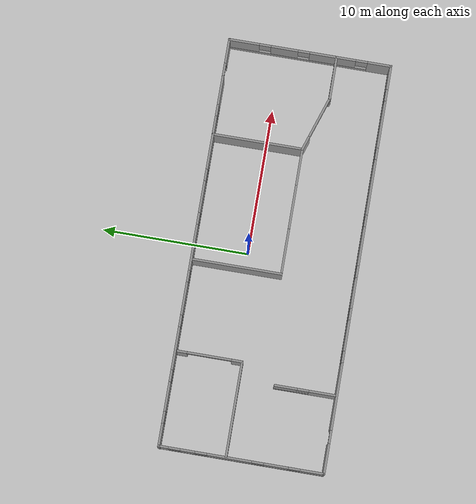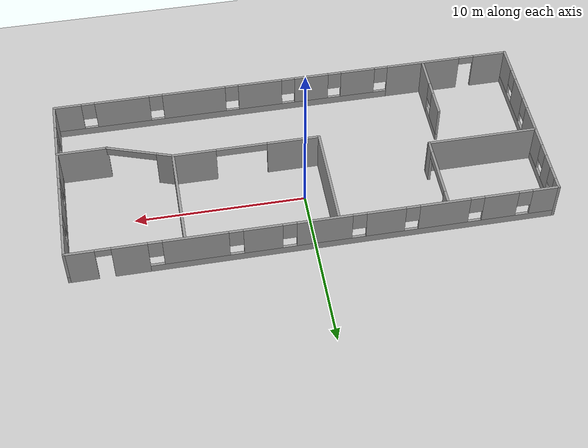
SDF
<?xml version="1.0"?>
<sdf version="1.6">
	<world name="office_world">
		<physics name="1ms" type="ignored">
			<max_step_size>0.001</max_step_size>
			<real_time_factor>1.0</real_time_factor>
		</physics>
		<plugin filename="ignition-gazebo-physics-system" name="ignition::gazebo::systems::Physics"></plugin>
		<plugin filename="ignition-gazebo-user-commands-system" name="ignition::gazebo::systems::UserCommands"></plugin>
		<plugin filename="ignition-gazebo-scene-broadcaster-system" name="ignition::gazebo::systems::SceneBroadcaster"></plugin>
		<plugin filename="ignition-gazebo-contact-system" name="ignition::gazebo::systems::Contact"></plugin>

		<model name="ground_plane">
			<static>true</static>
			<link name="link">
				<collision name="collision">
					<geometry>
						<plane>
						<normal>0 0 1</normal>
						<size>100 100</size>
						</plane>
					</geometry>
				</collision>
				<visual name="visual">
				<geometry>
					<plane>
						<normal>0 0 1</normal>
						<size>100 100</size>
					</plane>
				</geometry>
				<material>
					<ambient>0.8 0.8 0.8 1</ambient>
					<diffuse>0.8 0.8 0.8 1</diffuse>
					<specular>0.8 0.8 0.8 1</specular>
				</material>
				</visual>
			</link>
		</model>

		<light type="directional" name="sun">
			<cast_shadows>true</cast_shadows>
			<pose>0 0 10 0 0 0</pose>
			<diffuse>0.8 0.8 0.8 1</diffuse>
			<specular>0.2 0.2 0.2 1</specular>
			<attenuation>
				<range>1000</range>
				<constant>0.9</constant>
				<linear>0.01</linear>
				<quadratic>0.001</quadratic>
			</attenuation>
			<direction>-0.5 0.1 -0.9</direction>
		</light>

		<include>
			<uri>/office</uri>
		</include>
	</world>
</sdf>

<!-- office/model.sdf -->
<sdf version='1.7'>
  <model name='office'>
    <pose>0 0 0 0 -0 0</pose>
    <link name='Wall_12'>
      <pose>0.014979 -7.43334 0 0 -0 0</pose>
      <visual name='Wall_12_Visual_0'>
        <pose>-12.9625 0 1.25 0 -0 0</pose>
        <geometry>
          <box>
            <size>2.075 0.15 2.5</size>
          </box>
        </geometry>
        <material>
          <script>
            <uri>file://media/materials/scripts/gazebo.material</uri>
            <name>Gazebo/Grey</name>
          </script>
          <ambient>1 1 1 1</ambient>
        </material>
        <meta>
          <layer>0</layer>
        </meta>
      </visual>
      <collision name='Wall_12_Collision_0'>
        <geometry>
          <box>
            <size>2.075 0.15 2.5</size>
          </box>
        </geometry>
        <pose>-12.9625 0 1.25 0 -0 0</pose>
      </collision>
      <visual name='Wall_12_Visual_1'>
        <pose>-8.75 0 1.25 0 -0 0</pose>
        <geometry>
          <box>
            <size>4.55 0.15 2.5</size>
          </box>
        </geometry>
        <material>
          <script>
            <uri>file://media/materials/scripts/gazebo.material</uri>
            <name>Gazebo/Grey</name>
          </script>
          <ambient>1 1 1 1</ambient>
        </material>
        <meta>
          <layer>0</layer>
        </meta>
      </visual>
      <collision name='Wall_12_Collision_1'>
        <geometry>
          <box>
            <size>4.55 0.15 2.5</size>
          </box>
        </geometry>
        <pose>-8.75 0 1.25 0 -0 0</pose>
      </collision>
      <visual name='Wall_12_Visual_2'>
        <pose>3.7625 0 0.25 0 -0 0</pose>
        <geometry>
          <box>
            <size>20.475 0.15 0.5</size>
          </box>
        </geometry>
        <material>
          <script>
            <uri>file://media/materials/scripts/gazebo.material</uri>
            <name>Gazebo/Grey</name>
          </script>
          <ambient>1 1 1 1</ambient>
        </material>
        <meta>
          <layer>0</layer>
        </meta>
      </visual>
      <collision name='Wall_12_Collision_2'>
        <geometry>
          <box>
            <size>20.475 0.15 0.5</size>
          </box>
        </geometry>
        <pose>3.7625 0 0.25 0 -0 0</pose>
      </collision>
      <visual name='Wall_12_Visual_3'>
        <pose>-4.62 0 1.5 0 -0 0</pose>
        <geometry>
          <box>
            <size>2.11 0.15 2</size>
          </box>
        </geometry>
        <material>
          <script>
            <uri>file://media/materials/scripts/gazebo.material</uri>
            <name>Gazebo/Grey</name>
          </script>
          <ambient>1 1 1 1</ambient>
        </material>
        <meta>
          <layer>0</layer>
        </meta>
      </visual>
      <collision name='Wall_12_Collision_3'>
        <geometry>
          <box>
            <size>2.11 0.15 2</size>
          </box>
        </geometry>
        <pose>-4.62 0 1.5 0 -0 0</pose>
      </collision>
      <visual name='Wall_12_Visual_4'>
        <pose>-1.72 0 1.5 0 -0 0</pose>
        <geometry>
          <box>
            <size>2.09 0.15 2</size>
          </box>
        </geometry>
        <material>
          <script>
            <uri>file://media/materials/scripts/gazebo.material</uri>
            <name>Gazebo/Grey</name>
          </script>
          <ambient>1 1 1 1</ambient>
        </material>
        <meta>
          <layer>0</layer>
        </meta>
      </visual>
      <collision name='Wall_12_Collision_4'>
        <geometry>
          <box>
            <size>2.09 0.15 2</size>
          </box>
        </geometry>
        <pose>-1.72 0 1.5 0 -0 0</pose>
      </collision>
      <visual name='Wall_12_Visual_5'>
        <pose>1.465 0 1.5 0 -0 0</pose>
        <geometry>
          <box>
            <size>2.68 0.15 2</size>
          </box>
        </geometry>
        <material>
          <script>
            <uri>file://media/materials/scripts/gazebo.material</uri>
            <name>Gazebo/Grey</name>
          </script>
          <ambient>1 1 1 1</ambient>
        </material>
        <meta>
          <layer>0</layer>
        </meta>
      </visual>
      <collision name='Wall_12_Collision_5'>
        <geometry>
          <box>
            <size>2.68 0.15 2</size>
          </box>
        </geometry>
        <pose>1.465 0 1.5 0 -0 0</pose>
      </collision>
      <visual name='Wall_12_Visual_6'>
        <pose>5.52 0 1.5 0 -0 0</pose>
        <geometry>
          <box>
            <size>3.83 0.15 2</size>
          </box>
        </geometry>
        <material>
          <script>
            <uri>file://media/materials/scripts/gazebo.material</uri>
            <name>Gazebo/Grey</name>
          </script>
          <ambient>1 1 1 1</ambient>
        </material>
        <meta>
          <layer>0</layer>
        </meta>
      </visual>
      <collision name='Wall_12_Collision_6'>
        <geometry>
          <box>
            <size>3.83 0.15 2</size>
          </box>
        </geometry>
        <pose>5.52 0 1.5 0 -0 0</pose>
      </collision>
      <visual name='Wall_12_Visual_7'>
        <pose>9.87 0 1.5 0 -0 0</pose>
        <geometry>
          <box>
            <size>3.27 0.15 2</size>
          </box>
        </geometry>
        <material>
          <script>
            <uri>file://media/materials/scripts/gazebo.material</uri>
            <name>Gazebo/Grey</name>
          </script>
          <ambient>1 1 1 1</ambient>
        </material>
        <meta>
          <layer>0</layer>
        </meta>
      </visual>
      <collision name='Wall_12_Collision_7'>
        <geometry>
          <box>
            <size>3.27 0.15 2</size>
          </box>
        </geometry>
        <pose>9.87 0 1.5 0 -0 0</pose>
      </collision>
      <visual name='Wall_12_Visual_8'>
        <pose>13.1525 0 1.5 0 -0 0</pose>
        <geometry>
          <box>
            <size>1.695 0.15 2</size>
          </box>
        </geometry>
        <material>
          <script>
            <uri>file://media/materials/scripts/gazebo.material</uri>
            <name>Gazebo/Grey</name>
          </script>
          <ambient>1 1 1 1</ambient>
        </material>
        <meta>
          <layer>0</layer>
        </meta>
      </visual>
      <collision name='Wall_12_Collision_8'>
        <geometry>
          <box>
            <size>1.695 0.15 2</size>
          </box>
        </geometry>
        <pose>13.1525 0 1.5 0 -0 0</pose>
      </collision>
      <visual name='Wall_12_Visual_9'>
        <pose>-6.075 0 1.9 0 -0 0</pose>
        <geometry>
          <box>
            <size>0.8 0.15 1.2</size>
          </box>
        </geometry>
        <material>
          <script>
            <uri>file://media/materials/scripts/gazebo.material</uri>
            <name>Gazebo/Grey</name>
          </script>
          <ambient>1 1 1 1</ambient>
        </material>
        <meta>
          <layer>0</layer>
        </meta>
      </visual>
      <collision name='Wall_12_Collision_9'>
        <geometry>
          <box>
            <size>0.8 0.15 1.2</size>
          </box>
        </geometry>
        <pose>-6.075 0 1.9 0 -0 0</pose>
      </collision>
      <visual name='Wall_12_Visual_10'>
        <pose>-3.165 0 1.9 0 -0 0</pose>
        <geometry>
          <box>
            <size>0.8 0.15 1.2</size>
          </box>
        </geometry>
        <material>
          <script>
            <uri>file://media/materials/scripts/gazebo.material</uri>
            <name>Gazebo/Grey</name>
          </script>
          <ambient>1 1 1 1</ambient>
        </material>
        <meta>
          <layer>0</layer>
        </meta>
      </visual>
      <collision name='Wall_12_Collision_10'>
        <geometry>
          <box>
            <size>0.8 0.15 1.2</size>
          </box>
        </geometry>
        <pose>-3.165 0 1.9 0 -0 0</pose>
      </collision>
      <visual name='Wall_12_Visual_11'>
        <pose>-0.275 0 1.9 0 -0 0</pose>
        <geometry>
          <box>
            <size>0.8 0.15 1.2</size>
          </box>
        </geometry>
        <material>
          <script>
            <uri>file://media/materials/scripts/gazebo.material</uri>
            <name>Gazebo/Grey</name>
          </script>
          <ambient>1 1 1 1</ambient>
        </material>
        <meta>
          <layer>0</layer>
        </meta>
      </visual>
      <collision name='Wall_12_Collision_11'>
        <geometry>
          <box>
            <size>0.8 0.15 1.2</size>
          </box>
        </geometry>
        <pose>-0.275 0 1.9 0 -0 0</pose>
      </collision>
      <visual name='Wall_12_Visual_12'>
        <pose>3.205 0 1.9 0 -0 0</pose>
        <geometry>
          <box>
            <size>0.8 0.15 1.2</size>
          </box>
        </geometry>
        <material>
          <script>
            <uri>file://media/materials/scripts/gazebo.material</uri>
            <name>Gazebo/Grey</name>
          </script>
          <ambient>1 1 1 1</ambient>
        </material>
        <meta>
          <layer>0</layer>
        </meta>
      </visual>
      <collision name='Wall_12_Collision_12'>
        <geometry>
          <box>
            <size>0.8 0.15 1.2</size>
          </box>
        </geometry>
        <pose>3.205 0 1.9 0 -0 0</pose>
      </collision>
      <visual name='Wall_12_Visual_13'>
        <pose>7.835 0 1.9 0 -0 0</pose>
        <geometry>
          <box>
            <size>0.8 0.15 1.2</size>
          </box>
        </geometry>
        <material>
          <script>
            <uri>file://media/materials/scripts/gazebo.material</uri>
            <name>Gazebo/Grey</name>
          </script>
          <ambient>1 1 1 1</ambient>
        </material>
        <meta>
          <layer>0</layer>
        </meta>
      </visual>
      <collision name='Wall_12_Collision_13'>
        <geometry>
          <box>
            <size>0.8 0.15 1.2</size>
          </box>
        </geometry>
        <pose>7.835 0 1.9 0 -0 0</pose>
      </collision>
      <visual name='Wall_12_Visual_14'>
        <pose>11.905 0 1.9 0 -0 0</pose>
        <geometry>
          <box>
            <size>0.8 0.15 1.2</size>
          </box>
        </geometry>
        <material>
          <script>
            <uri>file://media/materials/scripts/gazebo.material</uri>
            <name>Gazebo/Grey</name>
          </script>
          <ambient>1 1 1 1</ambient>
        </material>
        <meta>
          <layer>0</layer>
        </meta>
      </visual>
      <collision name='Wall_12_Collision_14'>
        <geometry>
          <box>
            <size>0.8 0.15 1.2</size>
          </box>
        </geometry>
        <pose>11.905 0 1.9 0 -0 0</pose>
      </collision>
      <visual name='Wall_12_Visual_15'>
        <pose>-11.475 0 2.25 0 -0 0</pose>
        <geometry>
          <box>
            <size>0.9 0.15 0.5</size>
          </box>
        </geometry>
        <material>
          <script>
            <uri>file://media/materials/scripts/gazebo.material</uri>
            <name>Gazebo/Grey</name>
          </script>
          <ambient>1 1 1 1</ambient>
        </material>
        <meta>
          <layer>0</layer>
        </meta>
      </visual>
      <collision name='Wall_12_Collision_15'>
        <geometry>
          <box>
            <size>0.9 0.15 0.5</size>
          </box>
        </geometry>
        <pose>-11.475 0 2.25 0 -0 0</pose>
      </collision>
    </link>
    <link name='Wall_13'>
      <pose>13.945 -1.88834 0 0 -0 1.5699</pose>
      <visual name='Wall_13_Visual_0'>
        <pose>-4.78246 0 1.25 0 -0 0</pose>
        <geometry>
          <box>
            <size>1.67519 0.15 2.5</size>
          </box>
        </geometry>
        <material>
          <script>
            <uri>file://media/materials/scripts/gazebo.material</uri>
            <name>Gazebo/Grey</name>
          </script>
          <ambient>1 1 1 1</ambient>
        </material>
        <meta>
          <layer>0</layer>
        </meta>
      </visual>
      <collision name='Wall_13_Collision_0'>
        <geometry>
          <box>
            <size>1.67519 0.15 2.5</size>
          </box>
        </geometry>
        <pose>-4.78246 0 1.25 0 -0 0</pose>
      </collision>
      <visual name='Wall_13_Visual_1'>
        <pose>0.837594 0 0.25 0 -0 0</pose>
        <geometry>
          <box>
            <size>9.56492 0.15 0.5</size>
          </box>
        </geometry>
        <material>
          <script>
            <uri>file://media/materials/scripts/gazebo.material</uri>
            <name>Gazebo/Grey</name>
          </script>
          <ambient>1 1 1 1</ambient>
        </material>
        <meta>
          <layer>0</layer>
        </meta>
      </visual>
      <collision name='Wall_13_Collision_1'>
        <geometry>
          <box>
            <size>9.56492 0.15 0.5</size>
          </box>
        </geometry>
        <pose>0.837594 0 0.25 0 -0 0</pose>
      </collision>
      <visual name='Wall_13_Visual_2'>
        <pose>-1.56471 0 1.5 0 -0 0</pose>
        <geometry>
          <box>
            <size>3.16031 0.15 2</size>
          </box>
        </geometry>
        <material>
          <script>
            <uri>file://media/materials/scripts/gazebo.material</uri>
            <name>Gazebo/Grey</name>
          </script>
          <ambient>1 1 1 1</ambient>
        </material>
        <meta>
          <layer>0</layer>
        </meta>
      </visual>
      <collision name='Wall_13_Collision_2'>
        <geometry>
          <box>
            <size>3.16031 0.15 2</size>
          </box>
        </geometry>
        <pose>-1.56471 0 1.5 0 -0 0</pose>
      </collision>
      <visual name='Wall_13_Visual_3'>
        <pose>1.74798 0 1.5 0 -0 0</pose>
        <geometry>
          <box>
            <size>1.86509 0.15 2</size>
          </box>
        </geometry>
        <material>
          <script>
            <uri>file://media/materials/scripts/gazebo.material</uri>
            <name>Gazebo/Grey</name>
          </script>
          <ambient>1 1 1 1</ambient>
        </material>
        <meta>
          <layer>0</layer>
        </meta>
      </visual>
      <collision name='Wall_13_Collision_3'>
        <geometry>
          <box>
            <size>1.86509 0.15 2</size>
          </box>
        </geometry>
        <pose>1.74798 0 1.5 0 -0 0</pose>
      </collision>
      <visual name='Wall_13_Visual_4'>
        <pose>4.55029 0 1.5 0 -0 0</pose>
        <geometry>
          <box>
            <size>2.13953 0.15 2</size>
          </box>
        </geometry>
        <material>
          <script>
            <uri>file://media/materials/scripts/gazebo.material</uri>
            <name>Gazebo/Grey</name>
          </script>
          <ambient>1 1 1 1</ambient>
        </material>
        <meta>
          <layer>0</layer>
        </meta>
      </visual>
      <collision name='Wall_13_Collision_4'>
        <geometry>
          <box>
            <size>2.13953 0.15 2</size>
          </box>
        </geometry>
        <pose>4.55029 0 1.5 0 -0 0</pose>
      </collision>
      <visual name='Wall_13_Visual_5'>
        <pose>-3.54487 0 1.9 0 -0 0</pose>
        <geometry>
          <box>
            <size>0.8 0.15 1.2</size>
          </box>
        </geometry>
        <material>
          <script>
            <uri>file://media/materials/scripts/gazebo.material</uri>
            <name>Gazebo/Grey</name>
          </script>
          <ambient>1 1 1 1</ambient>
        </material>
        <meta>
          <layer>0</layer>
        </meta>
      </visual>
      <collision name='Wall_13_Collision_5'>
        <geometry>
          <box>
            <size>0.8 0.15 1.2</size>
          </box>
        </geometry>
        <pose>-3.54487 0 1.9 0 -0 0</pose>
      </collision>
      <visual name='Wall_13_Visual_6'>
        <pose>0.415441 0 1.9 0 -0 0</pose>
        <geometry>
          <box>
            <size>0.8 0.15 1.2</size>
          </box>
        </geometry>
        <material>
          <script>
            <uri>file://media/materials/scripts/gazebo.material</uri>
            <name>Gazebo/Grey</name>
          </script>
          <ambient>1 1 1 1</ambient>
        </material>
        <meta>
          <layer>0</layer>
        </meta>
      </visual>
      <collision name='Wall_13_Collision_6'>
        <geometry>
          <box>
            <size>0.8 0.15 1.2</size>
          </box>
        </geometry>
        <pose>0.415441 0 1.9 0 -0 0</pose>
      </collision>
      <visual name='Wall_13_Visual_7'>
        <pose>3.08053 0 1.9 0 -0 0</pose>
        <geometry>
          <box>
            <size>0.8 0.15 1.2</size>
          </box>
        </geometry>
        <material>
          <script>
            <uri>file://media/materials/scripts/gazebo.material</uri>
            <name>Gazebo/Grey</name>
          </script>
          <ambient>1 1 1 1</ambient>
        </material>
        <meta>
          <layer>0</layer>
        </meta>
      </visual>
      <collision name='Wall_13_Collision_7'>
        <geometry>
          <box>
            <size>0.8 0.15 1.2</size>
          </box>
        </geometry>
        <pose>3.08053 0 1.9 0 -0 0</pose>
      </collision>
    </link>
    <link name='Wall_14'>
      <pose>-0.005021 3.66166 0 0 -0 3.14123</pose>
      <visual name='Wall_14_Visual_0'>
        <pose>-13.1575 0 1.25 0 -0 0</pose>
        <geometry>
          <box>
            <size>1.72497 0.15 2.5</size>
          </box>
        </geometry>
        <material>
          <script>
            <uri>file://media/materials/scripts/gazebo.material</uri>
            <name>Gazebo/Grey</name>
          </script>
          <ambient>1 1 1 1</ambient>
        </material>
        <meta>
          <layer>0</layer>
        </meta>
      </visual>
      <collision name='Wall_14_Collision_0'>
        <geometry>
          <box>
            <size>1.72497 0.15 2.5</size>
          </box>
        </geometry>
        <pose>-13.1575 0 1.25 0 -0 0</pose>
      </collision>
      <visual name='Wall_14_Visual_1'>
        <pose>-10.395 0 1.25 0 -0 0</pose>
        <geometry>
          <box>
            <size>2.00001 0.15 2.5</size>
          </box>
        </geometry>
        <material>
          <script>
            <uri>file://media/materials/scripts/gazebo.material</uri>
            <name>Gazebo/Grey</name>
          </script>
          <ambient>1 1 1 1</ambient>
        </material>
        <meta>
          <layer>0</layer>
        </meta>
      </visual>
      <collision name='Wall_14_Collision_1'>
        <geometry>
          <box>
            <size>2.00001 0.15 2.5</size>
          </box>
        </geometry>
        <pose>-10.395 0 1.25 0 -0 0</pose>
      </collision>
      <visual name='Wall_14_Visual_2'>
        <pose>2.31249 0 0.25 0 -0 0</pose>
        <geometry>
          <box>
            <size>23.415 0.15 0.5</size>
          </box>
        </geometry>
        <material>
          <script>
            <uri>file://media/materials/scripts/gazebo.material</uri>
            <name>Gazebo/Grey</name>
          </script>
          <ambient>1 1 1 1</ambient>
        </material>
        <meta>
          <layer>0</layer>
        </meta>
      </visual>
      <collision name='Wall_14_Collision_2'>
        <geometry>
          <box>
            <size>23.415 0.15 0.5</size>
          </box>
        </geometry>
        <pose>2.31249 0 0.25 0 -0 0</pose>
      </collision>
      <visual name='Wall_14_Visual_3'>
        <pose>-6.75501 0 1.5 0 -0 0</pose>
        <geometry>
          <box>
            <size>3.68001 0.15 2</size>
          </box>
        </geometry>
        <material>
          <script>
            <uri>file://media/materials/scripts/gazebo.material</uri>
            <name>Gazebo/Grey</name>
          </script>
          <ambient>1 1 1 1</ambient>
        </material>
        <meta>
          <layer>0</layer>
        </meta>
      </visual>
      <collision name='Wall_14_Collision_3'>
        <geometry>
          <box>
            <size>3.68001 0.15 2</size>
          </box>
        </geometry>
        <pose>-6.75501 0 1.5 0 -0 0</pose>
      </collision>
      <visual name='Wall_14_Visual_4'>
        <pose>-3.01501 0 1.5 0 -0 0</pose>
        <geometry>
          <box>
            <size>2.19999 0.15 2</size>
          </box>
        </geometry>
        <material>
          <script>
            <uri>file://media/materials/scripts/gazebo.material</uri>
            <name>Gazebo/Grey</name>
          </script>
          <ambient>1 1 1 1</ambient>
        </material>
        <meta>
          <layer>0</layer>
        </meta>
      </visual>
      <collision name='Wall_14_Collision_4'>
        <geometry>
          <box>
            <size>2.19999 0.15 2</size>
          </box>
        </geometry>
        <pose>-3.01501 0 1.5 0 -0 0</pose>
      </collision>
      <visual name='Wall_14_Visual_5'>
        <pose>0.465004 0 1.5 0 -0 0</pose>
        <geometry>
          <box>
            <size>3.16003 0.15 2</size>
          </box>
        </geometry>
        <material>
          <script>
            <uri>file://media/materials/scripts/gazebo.material</uri>
            <name>Gazebo/Grey</name>
          </script>
          <ambient>1 1 1 1</ambient>
        </material>
        <meta>
          <layer>0</layer>
        </meta>
      </visual>
      <collision name='Wall_14_Collision_5'>
        <geometry>
          <box>
            <size>3.16003 0.15 2</size>
          </box>
        </geometry>
        <pose>0.465004 0 1.5 0 -0 0</pose>
      </collision>
      <visual name='Wall_14_Visual_6'>
        <pose>3.97001 0 1.5 0 -0 0</pose>
        <geometry>
          <box>
            <size>2.24999 0.15 2</size>
          </box>
        </geometry>
        <material>
          <script>
            <uri>file://media/materials/scripts/gazebo.material</uri>
            <name>Gazebo/Grey</name>
          </script>
          <ambient>1 1 1 1</ambient>
        </material>
        <meta>
          <layer>0</layer>
        </meta>
      </visual>
      <collision name='Wall_14_Collision_6'>
        <geometry>
          <box>
            <size>2.24999 0.15 2</size>
          </box>
        </geometry>
        <pose>3.97001 0 1.5 0 -0 0</pose>
      </collision>
      <visual name='Wall_14_Visual_7'>
        <pose>7.35001 0 1.5 0 -0 0</pose>
        <geometry>
          <box>
            <size>2.91001 0.15 2</size>
          </box>
        </geometry>
        <material>
          <script>
            <uri>file://media/materials/scripts/gazebo.material</uri>
            <name>Gazebo/Grey</name>
          </script>
          <ambient>1 1 1 1</ambient>
        </material>
        <meta>
          <layer>0</layer>
        </meta>
      </visual>
      <collision name='Wall_14_Collision_7'>
        <geometry>
          <box>
            <size>2.91001 0.15 2</size>
          </box>
        </geometry>
        <pose>7.35001 0 1.5 0 -0 0</pose>
      </collision>
      <visual name='Wall_14_Visual_8'>
        <pose>10.61 0 1.5 0 -0 0</pose>
        <geometry>
          <box>
            <size>2.01001 0.15 2</size>
          </box>
        </geometry>
        <material>
          <script>
            <uri>file://media/materials/scripts/gazebo.material</uri>
            <name>Gazebo/Grey</name>
          </script>
          <ambient>1 1 1 1</ambient>
        </material>
        <meta>
          <layer>0</layer>
        </meta>
      </visual>
      <collision name='Wall_14_Collision_8'>
        <geometry>
          <box>
            <size>2.01001 0.15 2</size>
          </box>
        </geometry>
        <pose>10.61 0 1.5 0 -0 0</pose>
      </collision>
      <visual name='Wall_14_Visual_9'>
        <pose>13.2175 0 1.5 0 -0 0</pose>
        <geometry>
          <box>
            <size>1.60497 0.15 2</size>
          </box>
        </geometry>
        <material>
          <script>
            <uri>file://media/materials/scripts/gazebo.material</uri>
            <name>Gazebo/Grey</name>
          </script>
          <ambient>1 1 1 1</ambient>
        </material>
        <meta>
          <layer>0</layer>
        </meta>
      </visual>
      <collision name='Wall_14_Collision_9'>
        <geometry>
          <box>
            <size>1.60497 0.15 2</size>
          </box>
        </geometry>
        <pose>13.2175 0 1.5 0 -0 0</pose>
      </collision>
      <visual name='Wall_14_Visual_10'>
        <pose>-8.99501 0 1.9 0 -0 0</pose>
        <geometry>
          <box>
            <size>0.8 0.15 1.2</size>
          </box>
        </geometry>
        <material>
          <script>
            <uri>file://media/materials/scripts/gazebo.material</uri>
            <name>Gazebo/Grey</name>
          </script>
          <ambient>1 1 1 1</ambient>
        </material>
        <meta>
          <layer>0</layer>
        </meta>
      </visual>
      <collision name='Wall_14_Collision_10'>
        <geometry>
          <box>
            <size>0.8 0.15 1.2</size>
          </box>
        </geometry>
        <pose>-8.99501 0 1.9 0 -0 0</pose>
      </collision>
      <visual name='Wall_14_Visual_11'>
        <pose>-4.515 0 1.9 0 -0 0</pose>
        <geometry>
          <box>
            <size>0.8 0.15 1.2</size>
          </box>
        </geometry>
        <material>
          <script>
            <uri>file://media/materials/scripts/gazebo.material</uri>
            <name>Gazebo/Grey</name>
          </script>
          <ambient>1 1 1 1</ambient>
        </material>
        <meta>
          <layer>0</layer>
        </meta>
      </visual>
      <collision name='Wall_14_Collision_11'>
        <geometry>
          <box>
            <size>0.8 0.15 1.2</size>
          </box>
        </geometry>
        <pose>-4.515 0 1.9 0 -0 0</pose>
      </collision>
      <visual name='Wall_14_Visual_12'>
        <pose>-1.51501 0 1.9 0 -0 0</pose>
        <geometry>
          <box>
            <size>0.8 0.15 1.2</size>
          </box>
        </geometry>
        <material>
          <script>
            <uri>file://media/materials/scripts/gazebo.material</uri>
            <name>Gazebo/Grey</name>
          </script>
          <ambient>1 1 1 1</ambient>
        </material>
        <meta>
          <layer>0</layer>
        </meta>
      </visual>
      <collision name='Wall_14_Collision_12'>
        <geometry>
          <box>
            <size>0.8 0.15 1.2</size>
          </box>
        </geometry>
        <pose>-1.51501 0 1.9 0 -0 0</pose>
      </collision>
      <visual name='Wall_14_Visual_13'>
        <pose>2.44502 0 1.9 0 -0 0</pose>
        <geometry>
          <box>
            <size>0.8 0.15 1.2</size>
          </box>
        </geometry>
        <material>
          <script>
            <uri>file://media/materials/scripts/gazebo.material</uri>
            <name>Gazebo/Grey</name>
          </script>
          <ambient>1 1 1 1</ambient>
        </material>
        <meta>
          <layer>0</layer>
        </meta>
      </visual>
      <collision name='Wall_14_Collision_13'>
        <geometry>
          <box>
            <size>0.8 0.15 1.2</size>
          </box>
        </geometry>
        <pose>2.44502 0 1.9 0 -0 0</pose>
      </collision>
      <visual name='Wall_14_Visual_14'>
        <pose>5.49501 0 1.9 0 -0 0</pose>
        <geometry>
          <box>
            <size>0.8 0.15 1.2</size>
          </box>
        </geometry>
        <material>
          <script>
            <uri>file://media/materials/scripts/gazebo.material</uri>
            <name>Gazebo/Grey</name>
          </script>
          <ambient>1 1 1 1</ambient>
        </material>
        <meta>
          <layer>0</layer>
        </meta>
      </visual>
      <collision name='Wall_14_Collision_14'>
        <geometry>
          <box>
            <size>0.8 0.15 1.2</size>
          </box>
        </geometry>
        <pose>5.49501 0 1.9 0 -0 0</pose>
      </collision>
      <visual name='Wall_14_Visual_15'>
        <pose>9.20502 0 1.9 0 -0 0</pose>
        <geometry>
          <box>
            <size>0.8 0.15 1.2</size>
          </box>
        </geometry>
        <material>
          <script>
            <uri>file://media/materials/scripts/gazebo.material</uri>
            <name>Gazebo/Grey</name>
          </script>
          <ambient>1 1 1 1</ambient>
        </material>
        <meta>
          <layer>0</layer>
        </meta>
      </visual>
      <collision name='Wall_14_Collision_15'>
        <geometry>
          <box>
            <size>0.8 0.15 1.2</size>
          </box>
        </geometry>
        <pose>9.20502 0 1.9 0 -0 0</pose>
      </collision>
      <visual name='Wall_14_Visual_16'>
        <pose>12.015 0 1.9 0 -0 0</pose>
        <geometry>
          <box>
            <size>0.8 0.15 1.2</size>
          </box>
        </geometry>
        <material>
          <script>
            <uri>file://media/materials/scripts/gazebo.material</uri>
            <name>Gazebo/Grey</name>
          </script>
          <ambient>1 1 1 1</ambient>
        </material>
        <meta>
          <layer>0</layer>
        </meta>
      </visual>
      <collision name='Wall_14_Collision_16'>
        <geometry>
          <box>
            <size>0.8 0.15 1.2</size>
          </box>
        </geometry>
        <pose>12.015 0 1.9 0 -0 0</pose>
      </collision>
      <visual name='Wall_14_Visual_17'>
        <pose>-11.845 0 2.25 0 -0 0</pose>
        <geometry>
          <box>
            <size>0.9 0.15 0.5</size>
          </box>
        </geometry>
        <material>
          <script>
            <uri>file://media/materials/scripts/gazebo.material</uri>
            <name>Gazebo/Grey</name>
          </script>
          <ambient>1 1 1 1</ambient>
        </material>
        <meta>
          <layer>0</layer>
        </meta>
      </visual>
      <collision name='Wall_14_Collision_17'>
        <geometry>
          <box>
            <size>0.9 0.15 0.5</size>
          </box>
        </geometry>
        <pose>-11.845 0 2.25 0 -0 0</pose>
      </collision>
    </link>
    <link name='Wall_15'>
      <pose>-13.94 -1.87834 0 0 -0 -1.5708</pose>
      <visual name='Wall_15_Visual_0'>
        <pose>-5.26301 0 1.25 0 -0 0</pose>
        <geometry>
          <box>
            <size>0.714144 0.15 2.5</size>
          </box>
        </geometry>
        <material>
          <script>
            <uri>file://media/materials/scripts/gazebo.material</uri>
            <name>Gazebo/Grey</name>
          </script>
          <ambient>1 1 1 1</ambient>
        </material>
        <meta>
          <layer>0</layer>
        </meta>
      </visual>
      <collision name='Wall_15_Collision_0'>
        <geometry>
          <box>
            <size>0.714144 0.15 2.5</size>
          </box>
        </geometry>
        <pose>-5.26301 0 1.25 0 -0 0</pose>
      </collision>
      <visual name='Wall_15_Visual_1'>
        <pose>0.357072 0 0.25 0 -0 0</pose>
        <geometry>
          <box>
            <size>10.526 0.15 0.5</size>
          </box>
        </geometry>
        <material>
          <script>
            <uri>file://media/materials/scripts/gazebo.material</uri>
            <name>Gazebo/Grey</name>
          </script>
          <ambient>1 1 1 1</ambient>
        </material>
        <meta>
          <layer>0</layer>
        </meta>
      </visual>
      <collision name='Wall_15_Collision_1'>
        <geometry>
          <box>
            <size>10.526 0.15 0.5</size>
          </box>
        </geometry>
        <pose>0.357072 0 0.25 0 -0 0</pose>
      </collision>
      <visual name='Wall_15_Visual_2'>
        <pose>-3.61174 0 1.5 0 -0 0</pose>
        <geometry>
          <box>
            <size>0.988387 0.15 2</size>
          </box>
        </geometry>
        <material>
          <script>
            <uri>file://media/materials/scripts/gazebo.material</uri>
            <name>Gazebo/Grey</name>
          </script>
          <ambient>1 1 1 1</ambient>
        </material>
        <meta>
          <layer>0</layer>
        </meta>
      </visual>
      <collision name='Wall_15_Collision_2'>
        <geometry>
          <box>
            <size>0.988387 0.15 2</size>
          </box>
        </geometry>
        <pose>-3.61174 0 1.5 0 -0 0</pose>
      </collision>
      <visual name='Wall_15_Visual_3'>
        <pose>-0.804275 0 1.5 0 -0 0</pose>
        <geometry>
          <box>
            <size>3.02655 0.15 2</size>
          </box>
        </geometry>
        <material>
          <script>
            <uri>file://media/materials/scripts/gazebo.material</uri>
            <name>Gazebo/Grey</name>
          </script>
          <ambient>1 1 1 1</ambient>
        </material>
        <meta>
          <layer>0</layer>
        </meta>
      </visual>
      <collision name='Wall_15_Collision_3'>
        <geometry>
          <box>
            <size>3.02655 0.15 2</size>
          </box>
        </geometry>
        <pose>-0.804275 0 1.5 0 -0 0</pose>
      </collision>
      <visual name='Wall_15_Visual_4'>
        <pose>2.3279 0 1.5 0 -0 0</pose>
        <geometry>
          <box>
            <size>1.6378 0.15 2</size>
          </box>
        </geometry>
        <material>
          <script>
            <uri>file://media/materials/scripts/gazebo.material</uri>
            <name>Gazebo/Grey</name>
          </script>
          <ambient>1 1 1 1</ambient>
        </material>
        <meta>
          <layer>0</layer>
        </meta>
      </visual>
      <collision name='Wall_15_Collision_4'>
        <geometry>
          <box>
            <size>1.6378 0.15 2</size>
          </box>
        </geometry>
        <pose>2.3279 0 1.5 0 -0 0</pose>
      </collision>
      <visual name='Wall_15_Visual_5'>
        <pose>4.78344 0 1.5 0 -0 0</pose>
        <geometry>
          <box>
            <size>1.67328 0.15 2</size>
          </box>
        </geometry>
        <material>
          <script>
            <uri>file://media/materials/scripts/gazebo.material</uri>
            <name>Gazebo/Grey</name>
          </script>
          <ambient>1 1 1 1</ambient>
        </material>
        <meta>
          <layer>0</layer>
        </meta>
      </visual>
      <collision name='Wall_15_Collision_5'>
        <geometry>
          <box>
            <size>1.67328 0.15 2</size>
          </box>
        </geometry>
        <pose>4.78344 0 1.5 0 -0 0</pose>
      </collision>
      <visual name='Wall_15_Visual_6'>
        <pose>-4.50594 0 1.9 0 -0 0</pose>
        <geometry>
          <box>
            <size>0.8 0.15 1.2</size>
          </box>
        </geometry>
        <material>
          <script>
            <uri>file://media/materials/scripts/gazebo.material</uri>
            <name>Gazebo/Grey</name>
          </script>
          <ambient>1 1 1 1</ambient>
        </material>
        <meta>
          <layer>0</layer>
        </meta>
      </visual>
      <collision name='Wall_15_Collision_6'>
        <geometry>
          <box>
            <size>0.8 0.15 1.2</size>
          </box>
        </geometry>
        <pose>-4.50594 0 1.9 0 -0 0</pose>
      </collision>
      <visual name='Wall_15_Visual_7'>
        <pose>-2.71755 0 1.9 0 -0 0</pose>
        <geometry>
          <box>
            <size>0.8 0.15 1.2</size>
          </box>
        </geometry>
        <material>
          <script>
            <uri>file://media/materials/scripts/gazebo.material</uri>
            <name>Gazebo/Grey</name>
          </script>
          <ambient>1 1 1 1</ambient>
        </material>
        <meta>
          <layer>0</layer>
        </meta>
      </visual>
      <collision name='Wall_15_Collision_7'>
        <geometry>
          <box>
            <size>0.8 0.15 1.2</size>
          </box>
        </geometry>
        <pose>-2.71755 0 1.9 0 -0 0</pose>
      </collision>
      <visual name='Wall_15_Visual_8'>
        <pose>1.109 0 1.9 0 -0 0</pose>
        <geometry>
          <box>
            <size>0.8 0.15 1.2</size>
          </box>
        </geometry>
        <material>
          <script>
            <uri>file://media/materials/scripts/gazebo.material</uri>
            <name>Gazebo/Grey</name>
          </script>
          <ambient>1 1 1 1</ambient>
        </material>
        <meta>
          <layer>0</layer>
        </meta>
      </visual>
      <collision name='Wall_15_Collision_8'>
        <geometry>
          <box>
            <size>0.8 0.15 1.2</size>
          </box>
        </geometry>
        <pose>1.109 0 1.9 0 -0 0</pose>
      </collision>
      <visual name='Wall_15_Visual_9'>
        <pose>3.5468 0 1.9 0 -0 0</pose>
        <geometry>
          <box>
            <size>0.8 0.15 1.2</size>
          </box>
        </geometry>
        <material>
          <script>
            <uri>file://media/materials/scripts/gazebo.material</uri>
            <name>Gazebo/Grey</name>
          </script>
          <ambient>1 1 1 1</ambient>
        </material>
        <meta>
          <layer>0</layer>
        </meta>
      </visual>
      <collision name='Wall_15_Collision_9'>
        <geometry>
          <box>
            <size>0.8 0.15 1.2</size>
          </box>
        </geometry>
        <pose>3.5468 0 1.9 0 -0 0</pose>
      </collision>
    </link>
    <link name='Wall_18'>
      <pose>-8.69002 -5.32334 0 0 -0 1.5708</pose>
      <visual name='Wall_18_Visual_0'>
        <pose>-1.1775 0 1.25 0 -0 0</pose>
        <geometry>
          <box>
            <size>1.895 0.15 2.5</size>
          </box>
        </geometry>
        <material>
          <script>
            <uri>file://media/materials/scripts/gazebo.material</uri>
            <name>Gazebo/Grey</name>
          </script>
          <ambient>1 1 1 1</ambient>
        </material>
        <meta>
          <layer>0</layer>
        </meta>
      </visual>
      <collision name='Wall_18_Collision_0'>
        <geometry>
          <box>
            <size>1.895 0.15 2.5</size>
          </box>
        </geometry>
        <pose>-1.1775 0 1.25 0 -0 0</pose>
      </collision>
      <visual name='Wall_18_Visual_1'>
        <pose>0.9475 0 0.25 0 -0 0</pose>
        <geometry>
          <box>
            <size>2.355 0.15 0.5</size>
          </box>
        </geometry>
        <material>
          <script>
            <uri>file://media/materials/scripts/gazebo.material</uri>
            <name>Gazebo/Grey</name>
          </script>
          <ambient>1 1 1 1</ambient>
        </material>
        <meta>
          <layer>0</layer>
        </meta>
      </visual>
      <collision name='Wall_18_Collision_1'>
        <geometry>
          <box>
            <size>2.355 0.15 0.5</size>
          </box>
        </geometry>
        <pose>0.9475 0 0.25 0 -0 0</pose>
      </collision>
      <visual name='Wall_18_Visual_2'>
        <pose>1.3475 0 1.5 0 -0 0</pose>
        <geometry>
          <box>
            <size>1.555 0.15 2</size>
          </box>
        </geometry>
        <material>
          <script>
            <uri>file://media/materials/scripts/gazebo.material</uri>
            <name>Gazebo/Grey</name>
          </script>
          <ambient>1 1 1 1</ambient>
        </material>
        <meta>
          <layer>0</layer>
        </meta>
      </visual>
      <collision name='Wall_18_Collision_2'>
        <geometry>
          <box>
            <size>1.555 0.15 2</size>
          </box>
        </geometry>
        <pose>1.3475 0 1.5 0 -0 0</pose>
      </collision>
      <visual name='Wall_18_Visual_3'>
        <pose>0.17 0 1.9 0 -0 0</pose>
        <geometry>
          <box>
            <size>0.8 0.15 1.2</size>
          </box>
        </geometry>
        <material>
          <script>
            <uri>file://media/materials/scripts/gazebo.material</uri>
            <name>Gazebo/Grey</name>
          </script>
          <ambient>1 1 1 1</ambient>
        </material>
        <meta>
          <layer>0</layer>
        </meta>
      </visual>
      <collision name='Wall_18_Collision_3'>
        <geometry>
          <box>
            <size>0.8 0.15 1.2</size>
          </box>
        </geometry>
        <pose>0.17 0 1.9 0 -0 0</pose>
      </collision>
    </link>
    <link name='Wall_20'>
      <collision name='Wall_20_Collision'>
        <geometry>
          <box>
            <size>6.5 0.15 2.5</size>
          </box>
        </geometry>
        <pose>0 0 1.25 0 -0 0</pose>
      </collision>
      <visual name='Wall_20_Visual'>
        <pose>0 0 1.25 0 -0 0</pose>
        <geometry>
          <box>
            <size>6.5 0.15 2.5</size>
          </box>
        </geometry>
        <material>
          <script>
            <uri>file://media/materials/scripts/gazebo.material</uri>
            <name>Gazebo/Grey</name>
          </script>
          <ambient>1 1 1 1</ambient>
        </material>
        <meta>
          <layer>0</layer>
        </meta>
      </visual>
      <pose>-10.685 -0.85334 0 0 -0 0</pose>
    </link>
    <link name='Wall_21'>
      <pose>-7.51002 1.32166 0 0 -0 1.5708</pose>
      <visual name='Wall_21_Visual_0'>
        <pose>-1.8525 0 1.25 0 -0 0</pose>
        <geometry>
          <box>
            <size>0.795 0.15 2.5</size>
          </box>
        </geometry>
        <material>
          <script>
            <uri>file://media/materials/scripts/gazebo.material</uri>
            <name>Gazebo/Grey</name>
          </script>
          <ambient>1 1 1 1</ambient>
        </material>
        <meta>
          <layer>0</layer>
        </meta>
      </visual>
      <collision name='Wall_21_Collision_0'>
        <geometry>
          <box>
            <size>0.795 0.15 2.5</size>
          </box>
        </geometry>
        <pose>-1.8525 0 1.25 0 -0 0</pose>
      </collision>
      <visual name='Wall_21_Visual_1'>
        <pose>1.8975 0 1.25 0 -0 0</pose>
        <geometry>
          <box>
            <size>0.705 0.15 2.5</size>
          </box>
        </geometry>
        <material>
          <script>
            <uri>file://media/materials/scripts/gazebo.material</uri>
            <name>Gazebo/Grey</name>
          </script>
          <ambient>1 1 1 1</ambient>
        </material>
        <meta>
          <layer>0</layer>
        </meta>
      </visual>
      <collision name='Wall_21_Collision_1'>
        <geometry>
          <box>
            <size>0.705 0.15 2.5</size>
          </box>
        </geometry>
        <pose>1.8975 0 1.25 0 -0 0</pose>
      </collision>
      <visual name='Wall_21_Visual_2'>
        <pose>0.045 0 2.25 0 -0 0</pose>
        <geometry>
          <box>
            <size>3 0.15 0.5</size>
          </box>
        </geometry>
        <material>
          <script>
            <uri>file://media/materials/scripts/gazebo.material</uri>
            <name>Gazebo/Grey</name>
          </script>
          <ambient>1 1 1 1</ambient>
        </material>
        <meta>
          <layer>0</layer>
        </meta>
      </visual>
      <collision name='Wall_21_Collision_2'>
        <geometry>
          <box>
            <size>3 0.15 0.5</size>
          </box>
        </geometry>
        <pose>0.045 0 2.25 0 -0 0</pose>
      </collision>
    </link>
    <link name='Wall_23'>
      <collision name='Wall_23_Collision'>
        <geometry>
          <box>
            <size>6.25 0.15 2.5</size>
          </box>
        </geometry>
        <pose>0 0 1.25 0 -0 0</pose>
      </collision>
      <visual name='Wall_23_Visual'>
        <pose>0 0 1.25 0 -0 0</pose>
        <geometry>
          <box>
            <size>6.25 0.15 2.5</size>
          </box>
        </geometry>
        <material>
          <script>
            <uri>file://media/materials/scripts/gazebo.material</uri>
            <name>Gazebo/Grey</name>
          </script>
          <ambient>1 1 1 1</ambient>
        </material>
        <meta>
          <layer>0</layer>
        </meta>
      </visual>
      <pose>-1.27002 0.59666 0 0 -0 -1.5708</pose>
    </link>
    <link name='Wall_25'>
      <pose>3.02998 -2.45334 0 0 -0 0</pose>
      <visual name='Wall_25_Visual_0'>
        <pose>-2.7925 0 1.25 0 -0 0</pose>
        <geometry>
          <box>
            <size>3.165 0.15 2.5</size>
          </box>
        </geometry>
        <material>
          <script>
            <uri>file://media/materials/scripts/gazebo.material</uri>
            <name>Gazebo/Grey</name>
          </script>
          <ambient>1 1 1 1</ambient>
        </material>
        <meta>
          <layer>0</layer>
        </meta>
      </visual>
      <collision name='Wall_25_Collision_0'>
        <geometry>
          <box>
            <size>3.165 0.15 2.5</size>
          </box>
        </geometry>
        <pose>-2.7925 0 1.25 0 -0 0</pose>
      </collision>
      <visual name='Wall_25_Visual_1'>
        <pose>3.0825 0 1.25 0 -0 0</pose>
        <geometry>
          <box>
            <size>2.585 0.15 2.5</size>
          </box>
        </geometry>
        <material>
          <script>
            <uri>file://media/materials/scripts/gazebo.material</uri>
            <name>Gazebo/Grey</name>
          </script>
          <ambient>1 1 1 1</ambient>
        </material>
        <meta>
          <layer>0</layer>
        </meta>
      </visual>
      <collision name='Wall_25_Collision_1'>
        <geometry>
          <box>
            <size>2.585 0.15 2.5</size>
          </box>
        </geometry>
        <pose>3.0825 0 1.25 0 -0 0</pose>
      </collision>
      <visual name='Wall_25_Visual_2'>
        <pose>0.289999 0 2.25 0 -0 0</pose>
        <geometry>
          <box>
            <size>3 0.15 0.5</size>
          </box>
        </geometry>
        <material>
          <script>
            <uri>file://media/materials/scripts/gazebo.material</uri>
            <name>Gazebo/Grey</name>
          </script>
          <ambient>1 1 1 1</ambient>
        </material>
        <meta>
          <layer>0</layer>
        </meta>
      </visual>
      <collision name='Wall_25_Collision_2'>
        <geometry>
          <box>
            <size>3 0.15 0.5</size>
          </box>
        </geometry>
        <pose>0.289999 0 2.25 0 -0 0</pose>
      </collision>
    </link>
    <link name='Wall_26'>
      <collision name='Wall_26_Collision'>
        <geometry>
          <box>
            <size>6.25 0.15 2.5</size>
          </box>
        </geometry>
        <pose>0 0 1.25 0 -0 0</pose>
      </collision>
      <visual name='Wall_26_Visual'>
        <pose>0 0 1.25 0 -0 0</pose>
        <geometry>
          <box>
            <size>6.25 0.15 2.5</size>
          </box>
        </geometry>
        <material>
          <script>
            <uri>file://media/materials/scripts/gazebo.material</uri>
            <name>Gazebo/Grey</name>
          </script>
          <ambient>1 1 1 1</ambient>
        </material>
        <meta>
          <layer>0</layer>
        </meta>
      </visual>
      <pose>7.32998 0.59666 0 0 -0 1.5708</pose>
    </link>
    <link name='Wall_30'>
      <collision name='Wall_30_Collision'>
        <geometry>
          <box>
            <size>3 0.15 2.5</size>
          </box>
        </geometry>
        <pose>0 0 1.25 0 -0 0</pose>
      </collision>
      <visual name='Wall_30_Visual'>
        <pose>0 0 1.25 0 -0 0</pose>
        <geometry>
          <box>
            <size>3 0.15 2.5</size>
          </box>
        </geometry>
        <material>
          <script>
            <uri>file://media/materials/scripts/gazebo.material</uri>
            <name>Gazebo/Grey</name>
          </script>
          <ambient>1 1 1 1</ambient>
        </material>
        <meta>
          <layer>0</layer>
        </meta>
      </visual>
      <pose>12.495 -3.71334 0 0 -0 3.14159</pose>
    </link>
    <link name='Wall_31'>
      <pose>9.19998 -3.08334 0 0 -0 2.81664</pose>
      <visual name='Wall_31_Visual_0'>
        <pose>-2.02712 0 1.25 0 -0 0</pose>
        <geometry>
          <box>
            <size>0.042309 0.15 2.5</size>
          </box>
        </geometry>
        <material>
          <script>
            <uri>file://media/materials/scripts/gazebo.material</uri>
            <name>Gazebo/Grey</name>
          </script>
          <ambient>1 1 1 1</ambient>
        </material>
        <meta>
          <layer>0</layer>
        </meta>
      </visual>
      <collision name='Wall_31_Collision_0'>
        <geometry>
          <box>
            <size>0.042309 0.15 2.5</size>
          </box>
        </geometry>
        <pose>-2.02712 0 1.25 0 -0 0</pose>
      </collision>
      <visual name='Wall_31_Visual_1'>
        <pose>1.52116 0 1.25 0 -0 0</pose>
        <geometry>
          <box>
            <size>1.05423 0.15 2.5</size>
          </box>
        </geometry>
        <material>
          <script>
            <uri>file://media/materials/scripts/gazebo.material</uri>
            <name>Gazebo/Grey</name>
          </script>
          <ambient>1 1 1 1</ambient>
        </material>
        <meta>
          <layer>0</layer>
        </meta>
      </visual>
      <collision name='Wall_31_Collision_1'>
        <geometry>
          <box>
            <size>1.05423 0.15 2.5</size>
          </box>
        </geometry>
        <pose>1.52116 0 1.25 0 -0 0</pose>
      </collision>
      <visual name='Wall_31_Visual_2'>
        <pose>-0.505962 0 2.25 0 -0 0</pose>
        <geometry>
          <box>
            <size>3 0.15 0.5</size>
          </box>
        </geometry>
        <material>
          <script>
            <uri>file://media/materials/scripts/gazebo.material</uri>
            <name>Gazebo/Grey</name>
          </script>
          <ambient>1 1 1 1</ambient>
        </material>
        <meta>
          <layer>0</layer>
        </meta>
      </visual>
      <collision name='Wall_31_Collision_2'>
        <geometry>
          <box>
            <size>3 0.15 0.5</size>
          </box>
        </geometry>
        <pose>-0.505962 0 2.25 0 -0 0</pose>
      </collision>
    </link>
    <static>1</static>
  </model>
</sdf>
